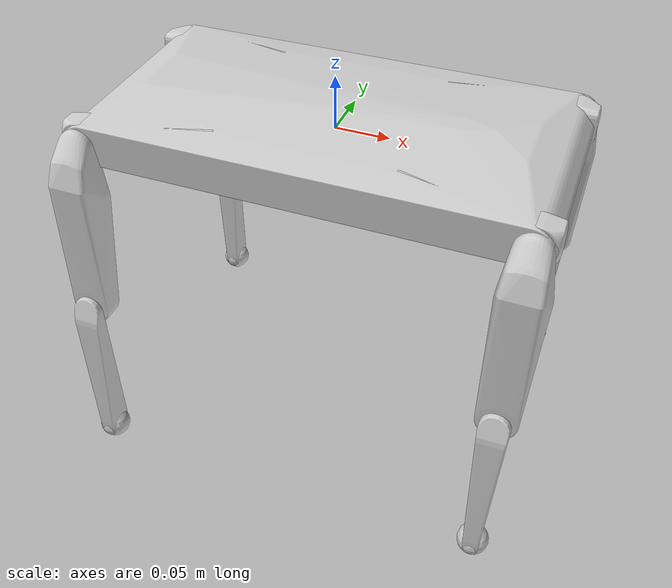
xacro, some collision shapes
<?xml version="1.0" ?>
<robot name="solo" xmlns:xacro="http://ros.org/wiki/xacro">

    <xacro:property name="color_name" value="grey" />
    <xacro:property name="color" value="0.8 0.8 0.8" />
    <xacro:property name="opacity" value="1.0" />

    <xacro:arg name="load_force_sensors" default="false"/>
    <xacro:arg name="task_period" default="0.004"/>
    <xacro:arg name="floating_base_link" default="true"/>
    <xacro:arg name="robot_name"  default="solo"/>
    <xacro:arg name="base_name"   default="base_link"/>

    <!-- generic simulator_gazebo plugins for starting mechanism control, ros time -->
    <xacro:include filename="$(find wolf_description_utils)/urdfs/gazebo.urdf.xacro"/>

    <!-- legs transmission and gazebo plugins -->
    <xacro:include filename="$(find wolf_description_utils)/urdfs/leg.transmission.xacro"/>
    <xacro:include filename="$(find wolf_description_utils)/urdfs/leg.gazebo.xacro"/>

    <!-- Floating-base Joint -->
    <xacro:if value="$(arg floating_base_link)">
            <link name="world"/>
            <joint name="floating_base_joint" type="floating">
                <origin rpy="0 0 0" xyz="0 0 0"/>
                <parent link="world"/>
                <child link="base_link"/>
            </joint>
    </xacro:if>

    <link name="base_link" />
    <joint name="floating_base" type="fixed">
        <origin rpy="0 0 0" xyz="0 0 0"/>
        <parent link="base_link"/>
        <child link="trunk"/>
    </joint>

    <link name="trunk">
        <inertial>
            <origin xyz="0 0 0" rpy="0 0 0" />
            <mass value="1.16115091"/>
            <!-- The base is extremely symmetrical. -->
            <inertia ixx="0.00578574"   ixy="0.0"           ixz="0.0"
                                        iyy="0.01938108"    iyz="0.0"
                                                            izz="0.02476124"/>
        </inertial>

        <visual>
            <origin xyz="0 0 0" rpy="0 0 0" />
            <geometry>
                <mesh filename="file://$(find solo_description)/meshes/stl/with_foot/solo_body.stl"/>
            </geometry>
                <material name="${color_name}">
                <color rgba="${color} ${opacity}"/>
            </material>
        </visual>
        <collision>
            <origin xyz="0 0 0" rpy="0 0 0" />
            <geometry>
                <mesh filename="file://$(find solo_description)/meshes/stl/with_foot/simple/solo_body.stl"/>
            </geometry>
            <material name="${color_name}">
                <color rgba="${color} ${opacity}"/>
            </material>
        </collision>
        <!-- Bullet specific paramters -->
        <contact>
            <lateral_friction value="1.0"/>
            <restitution value="0.5"/>
        </contact>
    </link>

    <!-- Include the legs -->
    <xacro:include filename="$(find solo_description)/urdfs/leg.xacro"/>

    <!-- LEFT FRONT LEG -->
    <xacro:leg
    prefix="lf"
    is_front="true"
    is_right="false"
    has_side_motion="true"
    color_name="${color_name}"
    color="${color}"
    opacity="${opacity}"
    load_force_sensors="$(arg load_force_sensors)"/>

    <!-- RIGHT FRONT LEG -->
    <xacro:leg
    prefix="rf"
    is_front="true"
    is_right="true"
    has_side_motion="true"
    color_name="${color_name}"
    color="${color}"
    opacity="${opacity}"
    load_force_sensors="$(arg load_force_sensors)"/>

    <!-- LEFT HIND LEG -->
    <xacro:leg
    prefix="lh"
    is_front="false"
    is_right="false"
    has_side_motion="true"
    color_name="${color_name}"
    color="${color}"
    opacity="${opacity}"
    load_force_sensors="$(arg load_force_sensors)"/>

    <!-- RIGHT HIND LEG -->
    <xacro:leg
    prefix="rh"
    is_front="false"
    is_right="true"
    has_side_motion="true"
    color_name="${color_name}"
    color="${color}"
    opacity="${opacity}"
    load_force_sensors="$(arg load_force_sensors)"/>

</robot>

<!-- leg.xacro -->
<robot xmlns:xacro="http://ros.org/wiki/xacro" name="solo">

    <!-- These are absoulte distance value, the sign are decided below -->
    <xacro:property name="base_2_HAA_x" value="${194.60 * 0.001}" />
    <xacro:property name="base_2_HAA_y" value="${87.50 * 0.001}" />

    <xacro:property name="HAA_2_HFE_y" value="${14.0 * 0.001}" />

    <xacro:property name="base_2_HFE_x" value="${190.00 * 0.001}" />
    <xacro:property name="base_2_HFE_y" value="${104.60 * 0.001}" />

    <xacro:property name="HFE_2_KFE_y" value="${37.45 * 0.001}" />
    <xacro:property name="HFE_2_KFE_z" value="${160.00 * 0.001}" />

    <xacro:property name="KFE_2_FOOT_y" value="${8.0 * 0.001}" />
    <xacro:property name="KFE_2_FOOT_z" value="${160.00 * 0.001}" />

    <!-- This macro has for purpose to define a leg -->
    <xacro:macro name="leg" params="prefix is_front is_right has_side_motion
                                  color_name color opacity load_force_sensors">

        <!-- Solo12 -->
        <xacro:if value="${has_side_motion}">
            <!--HAA JOINT: Joint between the trunk and the hip assembly -->
            <joint name="${prefix}_haa_joint" type="revolute">
                <parent link="trunk"/>
                <child link="${prefix}_hipassembly"/>
                <limit effort="1000" lower="-10" upper="10" velocity="1000"/>
                <!-- joints rotates around the x-axis -->
                <axis xyz="1 0 0"/>

                <!-- placement of the joint -->

                <xacro:if value="${is_front}">
                    <xacro:unless value="${is_right}">
                        <!-- LF_HAA_JOINT -->
                        <origin xyz="${base_2_HAA_x} ${base_2_HAA_y} 0" rpy="0 0 0" />
                    </xacro:unless>
                    <xacro:if value="${is_right}">
                        <!-- RF_HAA_JOINT -->
                        <origin xyz="${base_2_HAA_x} ${-base_2_HAA_y} 0" rpy="0 0 0" />
                    </xacro:if>
                </xacro:if>
                <xacro:unless value="${is_front}">
                    <xacro:unless value="${is_right}">
                        <!-- LH_HAA_JOINT -->
                        <origin xyz="${-base_2_HAA_x} ${base_2_HAA_y} 0" rpy="0 0 0" />
                    </xacro:unless>
                    <xacro:if value="${is_right}">
                        <!-- RH_HAA_JOINT -->
                        <origin xyz="${-base_2_HAA_x} ${-base_2_HAA_y} 0" rpy="0 0 0" />
                    </xacro:if>
                </xacro:unless>

                <!-- pybullet simulation parameters -->
                <dynamics damping="0.0" friction="0.0"/>
            </joint>

            <!-- HIP ASSEMBLY -->
            <link name="${prefix}_hipassembly">
                <!-- create a dummy hipassembly link to join the two joints -->
            	<!-- HIP ASSEMBLY VISUAL-->
	            <visual>
                    <xacro:if value="${is_front}">
                        <xacro:unless value="${is_right}">
                            <!-- LF HIP ASSEMBLY -->
                            <origin xyz="0.01950 0 0" rpy="0 0 0" />
                        	<geometry>
                        	    <mesh filename="file://$(find solo_description)/meshes/stl/solo12/solo12_hip_fe_fl.stl"/>
                        	</geometry>
                        </xacro:unless>
                        <xacro:if value="${is_right}">
                            <!-- RF HIP ASSEMBLY -->
                            <origin xyz="0.01950 0 0" rpy="0 0 0" />
                        	<geometry>
                        	    <mesh filename="file://$(find solo_description)/meshes/stl/solo12/solo12_hip_fe_fr.stl"/>
                        	</geometry>
                        </xacro:if>
                    </xacro:if>
                    <xacro:unless value="${is_front}">
                        <xacro:unless value="${is_right}">
                            <!-- LH HIP ASSEMBLY -->
                            <origin xyz="-0.01950 0 0" rpy="0 0 0" />
                        	<geometry>
                        	    <mesh filename="file://$(find solo_description)/meshes/stl/solo12/solo12_hip_fe_hl.stl"/>
                        	</geometry>
                        </xacro:unless>
                        <xacro:if value="${is_right}">
                            <!-- RH HIP ASSEMBLY -->
                            <origin xyz="-0.01950 0 0" rpy="0 0 0" />
                        	<geometry>
                        	    <mesh filename="file://$(find solo_description)/meshes/stl/solo12/solo12_hip_fe_hr.stl"/>
                        	</geometry>
                        </xacro:if>
                    </xacro:unless>
	                <material name="${color_name}">
                    	<color rgba="${color} ${opacity}"/>
                	</material>
	            </visual>

	            <!-- HIP ASSEMBLY COLLISION-->
	            <collision>
                    <xacro:if value="${is_front}">
                        <xacro:unless value="${is_right}">
                            <!-- LF HIP ASSEMBLY -->
                            <origin xyz="0.01950 0 0" rpy="0 0 0" />
                        	<geometry>
                        	    <mesh filename="file://$(find solo_description)/meshes/stl/solo12/simple/solo12_hip_fe_fl.stl"/>
                        	</geometry>
                        </xacro:unless>
                        <xacro:if value="${is_right}">
                            <!-- RF HIP ASSEMBLY -->
                            <origin xyz="0.01950 0 0" rpy="0 0 0" />
                        	<geometry>
                        	    <mesh filename="file://$(find solo_description)/meshes/stl/solo12/simple/solo12_hip_fe_fr.stl"/>
                        	</geometry>
                        </xacro:if>
                    </xacro:if>
                    <xacro:unless value="${is_front}">
                        <xacro:unless value="${is_right}">
                            <!-- LH HIP ASSEMBLY -->
                            <origin xyz="-0.01950 0 0" rpy="0 0 0" />
                        	<geometry>
                        	    <mesh filename="file://$(find solo_description)/meshes/stl/solo12/simple/solo12_hip_fe_hl.stl"/>
                        	</geometry>
                        </xacro:unless>
                        <xacro:if value="${is_right}">
                            <!-- RH HIP ASSEMBLY -->
                            <origin xyz="-0.01950 0 0" rpy="0 0 0" />
                        	<geometry>
                        	    <mesh filename="file://$(find solo_description)/meshes/stl/solo12/simple/solo12_hip_fe_hr.stl"/>
                        	</geometry>
                        </xacro:if>
                    </xacro:unless>
	                <material name="${color_name}">
                    	<color rgba="${color} ${opacity}"/>xacro
                	</material>
	            </collision>

	            <!-- HIP ASSEMBLY INERTIAL -->
	            <inertial>
	                <mass value="0.14853845"/>

	                <xacro:if value="${is_front}">
                        <xacro:unless value="${is_right}">
                            <!-- LF HIP ASSEMBLY -->
                            <origin xyz="-0.07870700 0.01 0." rpy="0 0 0" />
	                        <inertia ixx="0.00003024" ixy="0.00004671" ixz="0.0"
		                                              iyy="0.00041193" iyz="0.0"
		                                                               izz="0.00041107"/>
                        </xacro:unless>
                        <xacro:if value="${is_right}">
                            <!-- RF HIP ASSEMBLY -->
                            <origin xyz="-0.07870700 -0.01 0." rpy="0 0 0" />
                            <inertia ixx="0.00003024" ixy="-0.00004671" ixz="0.0"
		                                              iyy="0.00041193"  iyz="0.0"
		                                                                izz="0.00041107"/>
                        </xacro:if>
                    </xacro:if>
                    <xacro:unless value="${is_front}">
                        <xacro:unless value="${is_right}">
                            <!-- LH HIP ASSEMBLY -->
                            <origin xyz="0.07870700 0.01 0." rpy="0 0 0" />
	                        <inertia ixx="0.00003024" ixy="0.00004671" ixz="0.0"
	                                                  iyy="0.00041193" iyz="0.0"
		                                                               izz="0.00041107"/>
                        </xacro:unless>
                        <xacro:if value="${is_right}">
                            <!-- RH HIP ASSEMBLY -->
                            <origin xyz="0.07870700 -0.01 0." rpy="0 0 0" />
                            <inertia ixx="0.00003024" ixy="-0.00004671" ixz="0.0"
		                                              iyy="0.00041193"  iyz="0.0"
		                                                                izz="0.00041107"/>
                        </xacro:if>
                    </xacro:unless>
	            </inertial>
	        </link>

            <!--HFE JOINT-->
            <joint name="${prefix}_hfe_joint" type="revolute">
                <parent link="${prefix}_hipassembly"/>
                <child link="${prefix}_upperleg"/>
                <limit effort="1000" lower="-10" upper="10" velocity="1000"/>
                <!-- joints rotates around the y-axis -->
                <axis xyz="0 1 0"/>
                <!-- placement of the joint -->
                <xacro:if value="${is_right}">
                    <origin xyz="0 ${-HAA_2_HFE_y} 0" rpy="0 0 0" />
                </xacro:if>
                <xacro:unless value="${is_right}">
                    <origin xyz="0 ${HAA_2_HFE_y} 0" rpy="0 0 0" />
                </xacro:unless>
                <!-- pybullet simulation parameters -->
                <dynamics damping="0.0" friction="0.0"/>
            </joint>
        </xacro:if>

        <!-- SOLO 9 -->
        <xacro:unless value="${has_side_motion}">
            <!-- Joint between the base and the ${prefix} upper leg -->
            <joint name="${prefix}_hfe_joint" type="revolute">
                <parent link="trunk"/>
                <child link="${prefix}_upperleg"/>
                <limit effort="1000" lower="-10" upper="10" velocity="1000"/>
                <!-- joints rotates around the y-axis -->
                <axis xyz="0 1 0"/>
                <!-- placement of the joint -->
                <xacro:if value="${is_front}">
                    <xacro:unless value="${is_right}">
                        <origin xyz="${base_2_HFE_x} ${base_2_HFE_y} 0" rpy="0 0 0" />
                    </xacro:unless>
                    <xacro:if value="${is_right}">
                        <origin xyz="${base_2_HFE_x} ${-base_2_HFE_y} 0" rpy="0 0 0" />
                    </xacro:if>
                </xacro:if>
                <xacro:unless value="${is_front}">
                    <xacro:unless value="${is_right}">
                        <origin xyz="${-base_2_HFE_x} ${base_2_HFE_y} 0" rpy="0 0 0" />
                    </xacro:unless>
                    <xacro:if value="${is_right}">
                        <origin xyz="${-base_2_HFE_x} ${-base_2_HFE_y} 0" rpy="0 0 0" />
                    </xacro:if>
                </xacro:unless>
                <!-- pybullet simulation parameters -->
                <dynamics damping="0.0" friction="0.0"/>
            </joint>
        </xacro:unless>

        <!-- UPPER LEG LINK -->
        <link name="${prefix}_upperleg">
            <!-- UPPER LEG LINK INERTIAL -->
            <xacro:unless value="${is_right}">
                <!-- Left upper leg inertia -->
                <inertial>
                    <origin xyz="0.00001377 0.01935853 -0.07870700" rpy="0 0 0" />
                    <mass value="0.14853845"/>
                    <inertia ixx="0.00041107" ixy="0.0"         ixz="0.0"
                                              iyy="0.00041193"  iyz="0.00004671"
                                                                izz="0.00003024"/>
                </inertial>
            </xacro:unless>
            <xacro:if value="${is_right}">
            <!-- Right upper leg inertia -->
                <inertial>
                    <origin xyz="-0.00001377 -0.01935853 -0.07870700" rpy="0 0 0" />
                    <mass value="0.14853845"/>
                    <inertia ixx="0.00041107" ixy="0.0"         ixz="0.0"
                                              iyy="0.00041193"  iyz="-0.00004671"
                                                                izz="0.00003024"/>
                </inertial>
            </xacro:if>

            <!-- UPPER LEG LINK VISUAL -->
            <visual>
                <origin xyz="0 0 0" rpy="0 0 0" />
                <geometry>
                    <xacro:unless value="${is_right}">
                        <mesh filename="file://$(find solo_description)/meshes/stl/with_foot/solo_upper_leg_left_side.stl"/>
                    </xacro:unless>
                    <xacro:if value="${is_right}">
                        <mesh filename="file://$(find solo_description)/meshes/stl/with_foot/solo_upper_leg_right_side.stl"/>
                    </xacro:if>
                </geometry>
                <material name="${color_name}">
                    <color rgba="${color} ${opacity}"/>
                </material>
            </visual>

            <!-- UPPER LEG LINK COLLISION -->
            <collision>
                <origin xyz="0 0 0" rpy="0 0 0" />
                <geometry>
                    <xacro:unless value="${is_right}">
                        <mesh filename="file://$(find solo_description)/meshes/stl/with_foot/simple/solo_upper_leg_left_side.stl"/>
                    </xacro:unless>
                    <xacro:if value="${is_right}">
                        <mesh filename="file://$(find solo_description)/meshes/stl/with_foot/simple/solo_upper_leg_right_side.stl"/>
                    </xacro:if>
                </geometry>
                <material name="${color_name}">
                    <color rgba="${color} ${opacity}"/>
                </material>
            </collision>
            <!-- Bullet specific paramters -->
            <contact>
                <lateral_friction value="1.0"/>
                <restitution value="0.5"/>
            </contact>
        </link> <!-- END UPPER LEG LINK -->

        <!-- KFE JOINT: Joint between the upper leg and the lower leg -->
        <joint name="${prefix}_kfe_joint" type="revolute">
            <parent link="${prefix}_upperleg"/>
            <child link="${prefix}_lowerleg"/>
            <limit effort="1000" lower="-10" upper="10" velocity="1000"/>
            <!-- joints rotates around the y-axis -->
            <axis xyz="0 1 0"/>
            <!-- placement of the joint -->
            <xacro:if value="${is_front}">
                <xacro:unless value="${is_right}">
                    <origin xyz="0 ${HFE_2_KFE_y} ${-HFE_2_KFE_z}" rpy="0 0 0" />
                </xacro:unless>
                <xacro:if value="${is_right}">
                    <origin xyz="0 ${-HFE_2_KFE_y} ${-HFE_2_KFE_z}" rpy="0 0 0" />
                </xacro:if>
            </xacro:if>
            <xacro:unless value="${is_front}">
                <xacro:unless value="${is_right}">
                    <origin xyz="0 ${HFE_2_KFE_y} ${-HFE_2_KFE_z}" rpy="0 0 0" />
                </xacro:unless>
                <xacro:if value="${is_right}">
                    <origin xyz="0 ${-HFE_2_KFE_y} ${-HFE_2_KFE_z}" rpy="0 0 0" />
                </xacro:if>
            </xacro:unless>
            <!-- pybullet simulation parameters -->
            <dynamics damping="0.0" friction="0.0"/>
        </joint>

        <!-- LOWERLEG -->
        <link name="${prefix}_lowerleg">
            <!-- LOWER LEG LINK INERTIAL -->
            <xacro:unless value="${is_right}">
                <!-- Left lower leg inertia -->
                <inertial>
                <origin xyz="0.0 0.00787644 -0.08928215" rpy="0 0 0" />
                <mass value="0.03070001"/>
                <inertia ixx="0.00012024" ixy="0.0"         ixz="0.0"
                                          iyy="0.00012029"  iyz="0.00000305"
                                                            izz="0.00000216"/>
                </inertial>
            </xacro:unless>
            <xacro:if value="${is_right}">
                <!-- Right lower leg inertia -->
                <inertial>
                <origin xyz="0.0 0.00787644 -0.08928215" rpy="0 0 0" />
                <mass value="0.03070001"/>
                <inertia ixx="0.00012024" ixy="0.0"         ixz="0.0"
                                          iyy="0.00012029"  iyz="-0.00000305"
                                                            izz="0.00000216"/>
                </inertial>
            </xacro:if>

            <!-- LOWER LEG LINK VISUAL -->
            <visual>
                <origin xyz="0 0 0" rpy="0 0 0" />
                <geometry>
                    <xacro:unless value="${is_right}">
                        <mesh filename="file://$(find solo_description)/meshes/stl/with_foot/solo_lower_leg_left_side.stl"/>
                    </xacro:unless>
                    <xacro:if value="${is_right}">
                        <mesh filename="file://$(find solo_description)/meshes/stl/with_foot/solo_lower_leg_right_side.stl"/>
                    </xacro:if>
                </geometry>
                <material name="${color_name}">
                    <color rgba="${color} ${opacity}"/>
                </material>
            </visual>

            <!-- LOWER LEG LINK COLLISION -->
            <collision>
                <origin xyz="0 0 0" rpy="0 0 0" />
                <geometry>
                    <xacro:unless value="${is_right}">
                        <mesh filename="file://$(find solo_description)/meshes/stl/with_foot/simple/solo_lower_leg_left_side.stl"/>
                    </xacro:unless>
                    <xacro:if value="${is_right}">
                        <mesh filename="file://$(find solo_description)/meshes/stl/with_foot/simple/solo_lower_leg_right_side.stl"/>
                    </xacro:if>
                </geometry>
                <material name="${color_name}">
                    <color rgba="${color} ${opacity}"/>
                </material>
            </collision>
            <!-- Bullet specific paramters -->
            <contact>
                <lateral_friction value="1.0"/>
                <restitution value="0.5"/>
            </contact>
        </link> <!-- END LOWER LEG LINK -->

        <!-- ANKLE: (Fixed) joint between the lower leg and the foot -->
        <joint name="${prefix}_ankle" type="fixed">
            <parent link="${prefix}_lowerleg"/>
            <child link="${prefix}_foot"/>
            <!-- Joint placement -->
            <xacro:unless value="${is_right}">
                <origin xyz="0 ${KFE_2_FOOT_y} ${-KFE_2_FOOT_z}" rpy="0 0 0" />
            </xacro:unless>

            <xacro:if value="${is_right}">
                <origin xyz="0 ${-KFE_2_FOOT_y} ${-KFE_2_FOOT_z}" rpy="0 0 0" />
            </xacro:if>

            <!-- pybullet simulation parameters -->
            <dynamics damping="0.0" friction="0.0"/>
        </joint>

        <!-- FOOT -->
        <link name="${prefix}_foot">
            <!-- FOOT INERTIAL -->
            <!-- This link is symmetrical left or right -->
            <inertial>
                <origin xyz="0 0 0.00035767" rpy="0 0 0" />
                <mass value="0.00693606"/>
                <inertia ixx="0.00000057" ixy="0.0"         ixz="0.0"
                                          iyy="0.00000084"  iyz="0.0"
                                                            izz="0.00000053"/>
            </inertial>

            <!-- FOOT VISUAL -->
            <visual>
                <origin xyz="0 0 0" rpy="0 0 0" />
                <geometry>
                    <mesh filename="file://$(find solo_description)/meshes/stl/with_foot/solo_foot.stl"/>
                </geometry>
                <material name="${color_name}">
                    <color rgba="${color} ${opacity}"/>
                </material>
            </visual>

            <!-- FOOT COLLISION -->
            <collision>
                <origin xyz="0 0 0" rpy="0 0 0" />
                <geometry>
                    <!-- mesh filename="$(find solo_description)/meshes/stl/with_foot/simple/solo_foot.stl"/ -->
                    <sphere radius="0.015"/>
                </geometry>
                <material name="${color_name}">
                    <color rgba="${color} ${opacity}"/>
                </material>
            </collision>

            <!-- Bullet specific paramters -->
            <contact>
                <lateral_friction value="1.0"/>
                <restitution value="0.5"/>
            </contact>
        </link> <!-- END FOOT LINK -->

        <!-- Extensions -->
        <xacro:leg_transmission prefix="${prefix}"/>
        <xacro:leg_gazebo prefix="${prefix}" load_force_sensors="${load_force_sensors}" robot_name="solo"/>
    </xacro:macro>
</robot>
